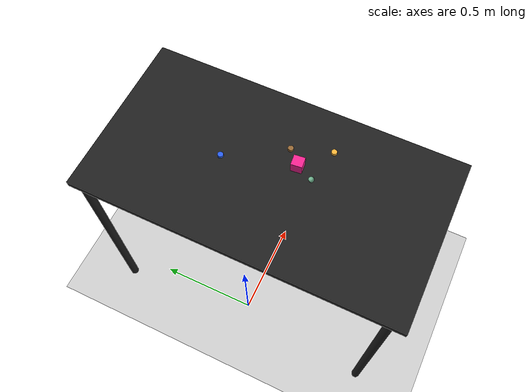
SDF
<?xml version="1.0" ?>
<sdf version="1.6">
  <world name="arm_world">
    <plugin filename="gz-sim-physics-system" name="gz::sim::systems::Physics">
      <engine>
        <filename>libgz-physics-bullet-featherstone-plugin.so</filename>
      </engine>
    </plugin>
    <plugin filename="gz-sim-user-commands-system" name="gz::sim::systems::UserCommands"/>
    <plugin filename="gz-sim-scene-broadcaster-system" name="gz::sim::systems::SceneBroadcaster"/>
    <plugin filename="gz-sim-sensors-system" name="gz::sim::systems::Sensors">
      <render_engine>ogre2</render_engine>
    </plugin>
    <gravity>0.0 0.0 -9.8</gravity>
    <scene>
      <shadows>false</shadows>
    </scene>
    <gui>
      <camera name="user_camera">
        <pose>0.75 -0.75 1.4 0 0.29 2.21</pose>
      </camera>
    </gui>
    <include>
      <uri>https://fuel.gazebosim.org/1.0/OpenRobotics/models/Sun</uri>
    </include>
    <model name="table">
      <static>true</static>
      <include>
        <uri>model://table</uri>
      </include>
      <pose>0.29 0 0 0 0 1.5708</pose>
    </model>
    <model name="ground_plane">
      <static>true</static>
      <link name="link">
        <collision name="collision">
          <geometry>
            <plane>
              <normal>0 0 1</normal>
            </plane>
          </geometry>
          <surface>
            <friction>
              <ode>
                <mu>1.0</mu>
                <mu2>1.0</mu2>
              </ode>
            </friction>
          </surface>
        </collision>
        <visual name="visual">
          <geometry>
            <plane>
              <normal>0 0 1</normal>
              <size>100 100</size>
            </plane>
          </geometry>
          <material>
            <ambient>0.8 0.8 0.8 1</ambient>
            <diffuse>0.8 0.8 0.8 1</diffuse>
            <specular>0.8 0.8 0.8 1</specular>
          </material>
        </visual>
      </link>
    </model>
    <model name="cylinder_s_0">
      <pose>0.479 -0.207 1.05 0 0 1.88</pose>
      <link name="cylinder_s_0_link">
        <inertial>
          <mass>0.05</mass>
          <inertia>
            <ixx>2.04e-7</ixx>
            <iyy>2.04e-7</iyy>
            <izz>3.9e-8</izz>
            <ixy>0</ixy>
            <ixz>0</ixz>
            <iyz>0</iyz>
          </inertia>
        </inertial>
        <collision name="cylinder_s_0_collision">
          <geometry>
            <cylinder>
              <radius>0.0125</radius>
              <length>0.0125</length>
            </cylinder>
          </geometry>
          <surface>
            <friction>
              <ode>
                <mu>0.8</mu>
                <mu2>0.8</mu2>
                <fdir1>0 0 1</fdir1>
                <slip1>0.001</slip1>
                <slip2>0.001</slip2>
              </ode>
              <torsional>
                <coefficient>0.1</coefficient>
                <surface_radius>0.015</surface_radius>
                <use_patch_radius>true</use_patch_radius>
              </torsional>
            </friction>
            <contact>
              <ode>
                <kp>1e5</kp>
                <kd>10</kd>
                <max_vel>0.1</max_vel>
                <min_depth>0.001</min_depth>
                <soft_cfm>0.01</soft_cfm>
                <soft_erp>0.2</soft_erp>
              </ode>
            </contact>
            <bounce>
              <restitution_coefficient>0.2</restitution_coefficient>
              <threshold>0.01</threshold>
            </bounce>
          </surface>
        </collision>
        <visual name="cylinder_s_0_visual">
          <geometry>
            <cylinder>
              <radius>0.0125</radius>
              <length>0.0125</length>
            </cylinder>
          </geometry>
          <material>
            <ambient>0.98 0.71 0.22 1</ambient>
            <diffuse>0.98 0.71 0.22 1</diffuse>
          </material>
        </visual>
        <velocity_decay>
          <linear>1</linear>
          <angular>1</angular>
        </velocity_decay>
      </link>
    </model>
    <model name="cube_m_1">
      <pose>0.362 -0.092 1.05 0 0 4.82</pose>
      <link name="cube_m_1_link">
        <inertial>
          <mass>0.05</mass>
          <inertia>
            <ixx>2.04e-7</ixx>
            <iyy>2.04e-7</iyy>
            <izz>3.9e-8</izz>
            <ixy>0</ixy>
            <ixz>0</ixz>
            <iyz>0</iyz>
          </inertia>
        </inertial>
        <collision name="cube_m_1_collision">
          <geometry>
            <box>
              <size>0.05 0.05 0.05</size>
            </box>
          </geometry>
          <surface>
            <friction>
              <ode>
                <mu>0.8</mu>
                <mu2>0.8</mu2>
                <fdir1>0 0 1</fdir1>
                <slip1>0.001</slip1>
                <slip2>0.001</slip2>
              </ode>
              <torsional>
                <coefficient>0.1</coefficient>
                <surface_radius>0.015</surface_radius>
                <use_patch_radius>true</use_patch_radius>
              </torsional>
            </friction>
            <contact>
              <ode>
                <kp>1e5</kp>
                <kd>10</kd>
                <max_vel>0.1</max_vel>
                <min_depth>0.001</min_depth>
                <soft_cfm>0.01</soft_cfm>
                <soft_erp>0.2</soft_erp>
              </ode>
            </contact>
            <bounce>
              <restitution_coefficient>0.2</restitution_coefficient>
              <threshold>0.01</threshold>
            </bounce>
          </surface>
        </collision>
        <visual name="cube_m_1_visual">
          <geometry>
            <box>
              <size>0.05 0.05 0.05</size>
            </box>
          </geometry>
          <material>
            <ambient>0.96 0.13 0.57 1</ambient>
            <diffuse>0.96 0.13 0.57 1</diffuse>
          </material>
        </visual>
        <velocity_decay>
          <linear>1</linear>
          <angular>1</angular>
        </velocity_decay>
      </link>
    </model>
    <model name="cylinder_s_2">
      <pose>0.264 0.219 1.05 0 0 2.78</pose>
      <link name="cylinder_s_2_link">
        <inertial>
          <mass>0.05</mass>
          <inertia>
            <ixx>2.04e-7</ixx>
            <iyy>2.04e-7</iyy>
            <izz>3.9e-8</izz>
            <ixy>0</ixy>
            <ixz>0</ixz>
            <iyz>0</iyz>
          </inertia>
        </inertial>
        <collision name="cylinder_s_2_collision">
          <geometry>
            <cylinder>
              <radius>0.0125</radius>
              <length>0.0125</length>
            </cylinder>
          </geometry>
          <surface>
            <friction>
              <ode>
                <mu>0.8</mu>
                <mu2>0.8</mu2>
                <fdir1>0 0 1</fdir1>
                <slip1>0.001</slip1>
                <slip2>0.001</slip2>
              </ode>
              <torsional>
                <coefficient>0.1</coefficient>
                <surface_radius>0.015</surface_radius>
                <use_patch_radius>true</use_patch_radius>
              </torsional>
            </friction>
            <contact>
              <ode>
                <kp>1e5</kp>
                <kd>10</kd>
                <max_vel>0.1</max_vel>
                <min_depth>0.001</min_depth>
                <soft_cfm>0.01</soft_cfm>
                <soft_erp>0.2</soft_erp>
              </ode>
            </contact>
            <bounce>
              <restitution_coefficient>0.2</restitution_coefficient>
              <threshold>0.01</threshold>
            </bounce>
          </surface>
        </collision>
        <visual name="cylinder_s_2_visual">
          <geometry>
            <cylinder>
              <radius>0.0125</radius>
              <length>0.0125</length>
            </cylinder>
          </geometry>
          <material>
            <ambient>0.16 0.37 0.94 1</ambient>
            <diffuse>0.16 0.37 0.94 1</diffuse>
          </material>
        </visual>
        <velocity_decay>
          <linear>1</linear>
          <angular>1</angular>
        </velocity_decay>
      </link>
    </model>
    <model name="cylinder_s_3">
      <pose>0.418 -0.034 1.05 0 0 4.53</pose>
      <link name="cylinder_s_3_link">
        <inertial>
          <mass>0.05</mass>
          <inertia>
            <ixx>2.04e-7</ixx>
            <iyy>2.04e-7</iyy>
            <izz>3.9e-8</izz>
            <ixy>0</ixy>
            <ixz>0</ixz>
            <iyz>0</iyz>
          </inertia>
        </inertial>
        <collision name="cylinder_s_3_collision">
          <geometry>
            <cylinder>
              <radius>0.0125</radius>
              <length>0.0125</length>
            </cylinder>
          </geometry>
          <surface>
            <friction>
              <ode>
                <mu>0.8</mu>
                <mu2>0.8</mu2>
                <fdir1>0 0 1</fdir1>
                <slip1>0.001</slip1>
                <slip2>0.001</slip2>
              </ode>
              <torsional>
                <coefficient>0.1</coefficient>
                <surface_radius>0.015</surface_radius>
                <use_patch_radius>true</use_patch_radius>
              </torsional>
            </friction>
            <contact>
              <ode>
                <kp>1e5</kp>
                <kd>10</kd>
                <max_vel>0.1</max_vel>
                <min_depth>0.001</min_depth>
                <soft_cfm>0.01</soft_cfm>
                <soft_erp>0.2</soft_erp>
              </ode>
            </contact>
            <bounce>
              <restitution_coefficient>0.2</restitution_coefficient>
              <threshold>0.01</threshold>
            </bounce>
          </surface>
        </collision>
        <visual name="cylinder_s_3_visual">
          <geometry>
            <cylinder>
              <radius>0.0125</radius>
              <length>0.0125</length>
            </cylinder>
          </geometry>
          <material>
            <ambient>0.59 0.41 0.21 1</ambient>
            <diffuse>0.59 0.41 0.21 1</diffuse>
          </material>
        </visual>
        <velocity_decay>
          <linear>1</linear>
          <angular>1</angular>
        </velocity_decay>
      </link>
    </model>
    <model name="sphere_s_4">
      <pose>0.319 -0.172 1.05 0 0 1.76</pose>
      <link name="sphere_s_4_link">
        <inertial>
          <mass>0.05</mass>
          <inertia>
            <ixx>2.04e-7</ixx>
            <iyy>2.04e-7</iyy>
            <izz>3.9e-8</izz>
            <ixy>0</ixy>
            <ixz>0</ixz>
            <iyz>0</iyz>
          </inertia>
        </inertial>
        <collision name="sphere_s_4_collision">
          <geometry>
            <sphere>
              <radius>0.0125</radius>
            </sphere>
          </geometry>
          <surface>
            <friction>
              <ode>
                <mu>0.8</mu>
                <mu2>0.8</mu2>
                <fdir1>0 0 1</fdir1>
                <slip1>0.001</slip1>
                <slip2>0.001</slip2>
              </ode>
              <torsional>
                <coefficient>0.1</coefficient>
                <surface_radius>0.015</surface_radius>
                <use_patch_radius>true</use_patch_radius>
              </torsional>
            </friction>
            <contact>
              <ode>
                <kp>1e5</kp>
                <kd>10</kd>
                <max_vel>0.1</max_vel>
                <min_depth>0.001</min_depth>
                <soft_cfm>0.01</soft_cfm>
                <soft_erp>0.2</soft_erp>
              </ode>
            </contact>
            <bounce>
              <restitution_coefficient>0.2</restitution_coefficient>
              <threshold>0.01</threshold>
            </bounce>
          </surface>
        </collision>
        <visual name="sphere_s_4_visual">
          <geometry>
            <sphere>
              <radius>0.0125</radius>
            </sphere>
          </geometry>
          <material>
            <ambient>0.43 0.69 0.55 1</ambient>
            <diffuse>0.43 0.69 0.55 1</diffuse>
          </material>
        </visual>
        <velocity_decay>
          <linear>1</linear>
          <angular>1</angular>
        </velocity_decay>
      </link>
    </model>
  </world>
</sdf>

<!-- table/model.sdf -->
<sdf version="1.5">
  <model name="table">
    <static>true</static>
    <link name="link">
      <collision name="surface">
        <pose>0 0 1.0 0 0 0</pose>
        <geometry>
          <box>
            <size>1.5 0.8 0.03</size>
          </box>
        </geometry>
        <surface>
          <friction>
            <ode>
              <mu>0.6</mu>
              <mu2>0.6</mu2>
            </ode>
          </friction>
        </surface>
      </collision>
      <visual name="surface">
        <pose>0 0 1.0 0 0 0</pose>
        <geometry>
          <box>
            <size>1.5 0.8 0.03</size>
          </box>
        </geometry>
        <material>
          <script>
            <uri>file://media/materials/scripts/gazebo.material</uri>
            <name>Gazebo/Black</name>
          </script>
        </material>
      </visual>
      <collision name="front_left_leg">
        <pose>0.68 0.38 0.5 0 0 0</pose>
        <geometry>
          <cylinder>
            <radius>0.02</radius>
            <length>1.0</length>
          </cylinder>
        </geometry>
      </collision>
      <visual name="front_left_leg">
        <pose>0.68 0.38 0.5 0 0 0</pose>
        <geometry>
          <cylinder>
            <radius>0.02</radius>
            <length>1.0</length>
          </cylinder>
        </geometry>
        <material>
          <script>
            <uri>file://media/materials/scripts/gazebo.material</uri>
            <name>Gazebo/Black</name>
          </script>
        </material>
      </visual>
      <collision name="front_right_leg">
        <pose>0.68 -0.38 0.5 0 0 0</pose>
        <geometry>
          <cylinder>
            <radius>0.02</radius>
            <length>1.0</length>
          </cylinder>
        </geometry>
      </collision>
      <visual name="front_right_leg">
        <pose>0.68 -0.38 0.5 0 0 0</pose>
        <geometry>
          <cylinder>
            <radius>0.02</radius>
            <length>1.0</length>
          </cylinder>
        </geometry>
        <material>
          <script>
            <uri>file://media/materials/scripts/gazebo.material</uri>
            <name>Gazebo/Black</name>
          </script>
        </material>
      </visual>
      <collision name="back_right_leg">
        <pose>-0.68 -0.38 0.5 0 0 0</pose>
        <geometry>
          <cylinder>
            <radius>0.02</radius>
            <length>1.0</length>
          </cylinder>
        </geometry>
      </collision>
      <visual name="back_right_leg">
        <pose>-0.68 -0.38 0.5 0 0 0</pose>
        <geometry>
          <cylinder>
            <radius>0.02</radius>
            <length>1.0</length>
          </cylinder>
        </geometry>
        <material>
          <script>
            <uri>file://media/materials/scripts/gazebo.material</uri>
            <name>Gazebo/Black</name>
          </script>
        </material>
      </visual>
      <collision name="back_left_leg">
        <pose>-0.68 0.38 0.5 0 0 0</pose>
        <geometry>
          <cylinder>
            <radius>0.02</radius>
            <length>1.0</length>
          </cylinder>
        </geometry>
      </collision>
      <visual name="back_left_leg">
        <pose>-0.68 0.38 0.5 0 0 0</pose>
        <geometry>
          <cylinder>
            <radius>0.02</radius>
            <length>1.0</length>
          </cylinder>
        </geometry>
        <material>
          <script>
            <uri>file://media/materials/scripts/gazebo.material</uri>
            <name>Gazebo/Black</name>
          </script>
        </material>
      </visual>
    </link>
  </model>
</sdf>
